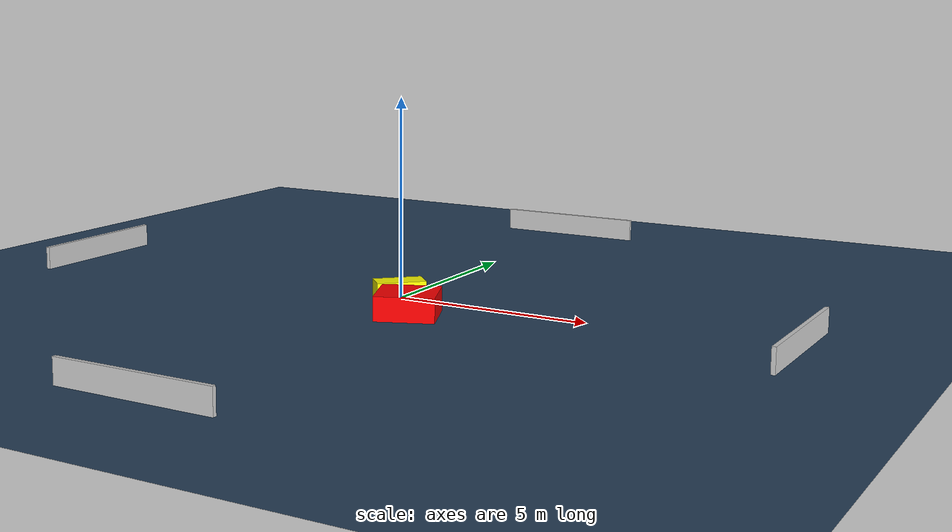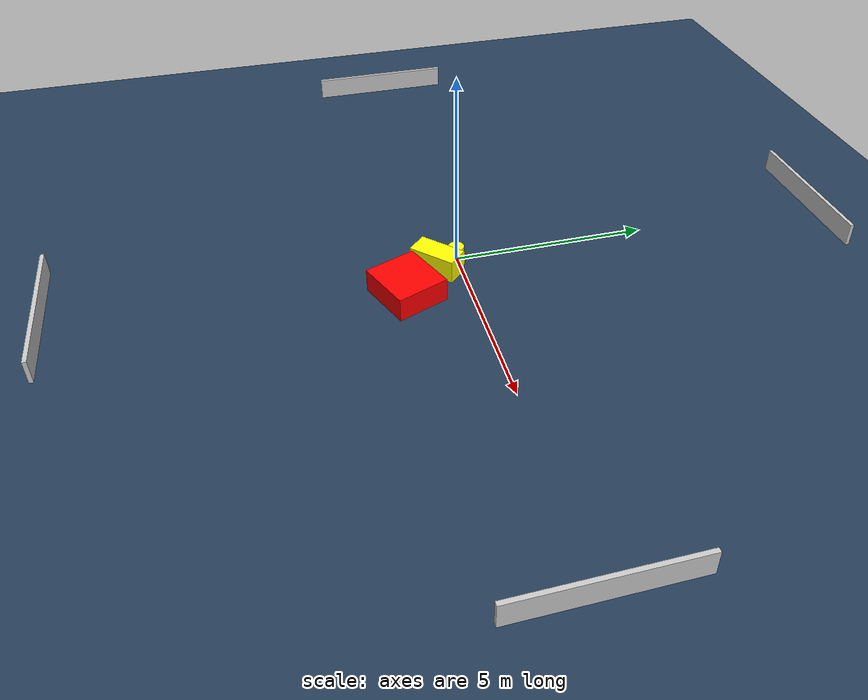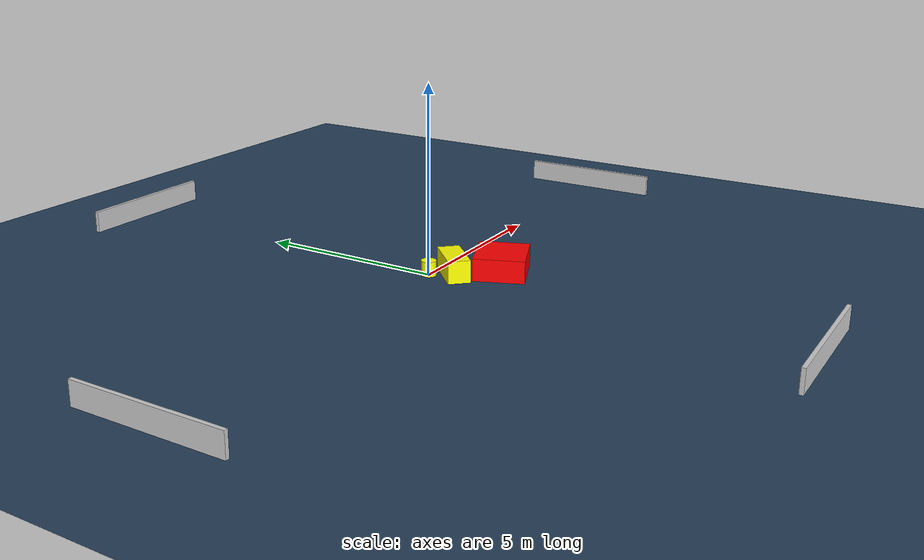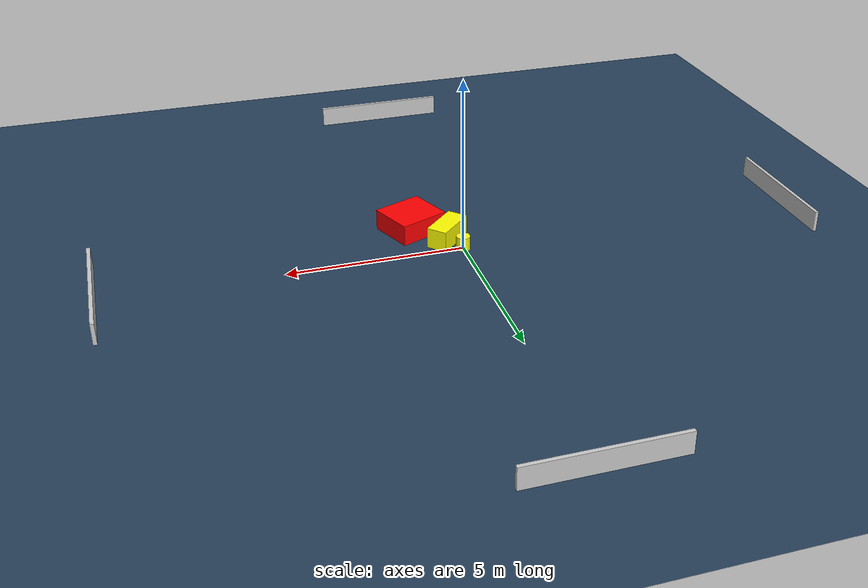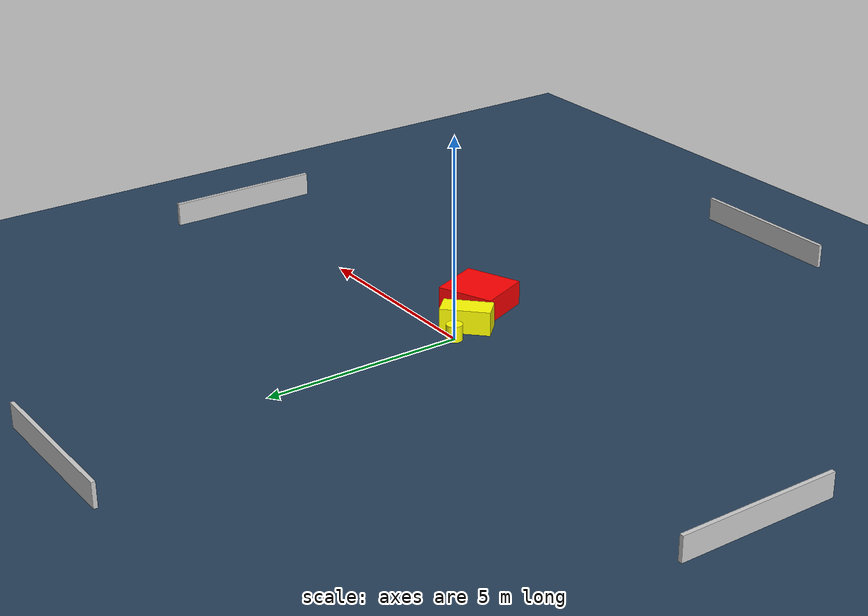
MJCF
<?xml version="1.0" ?>
<mujoco model="generated_environment">
  <option timestep="0.01" integrator="RK4" cone="elliptic"/>
  <default>
    <geom density="1"/>
  </default>
  <asset>
    <texture builtin="gradient" height="3072" name="skybox" rgb1="0.3 0.5 0.7" rgb2="0 0 0" type="skybox" width="512"/>
    <texture builtin="checker" height="300" name="groundplane" rgb1="0.2 0.3 0.4" rgb2="0.1 0.2 0.3" type="2d" width="300"/>
    <material name="groundplane" reflectance="0.2" texrepeat="5 5" texture="groundplane"/>
  </asset>
  <worldbody>
    <light dir="0 0 -1" directional="true" pos="0 0 1.5"/>
    <geom condim="3" friction="0.5 0.005 0.001" material="groundplane" name="floor" pos="0 0 0" size="0 0 0.05" type="plane"/>
    <body name="walls">
      <geom name="wall_1" condim="4" pos="-10.0 0.0 0.3" rgba="0.800000011920929 0.800000011920929 0.800000011920929 1.0" size="0.05 2.0 0.3" type="box"/>
      <geom name="wall_2" condim="4" pos="10.0 0.0 0.3" rgba="0.800000011920929 0.800000011920929 0.800000011920929 1.0" size="0.05 2.0 0.3" type="box"/>
      <geom name="wall_3" condim="4" pos="0.0 -10.0 0.3" rgba="0.800000011920929 0.800000011920929 0.800000011920929 1.0" size="2.0 0.05 0.3" type="box"/>
      <geom name="wall_4" condim="4" pos="0.0 10.0 0.3" rgba="0.800000011920929 0.800000011920929 0.800000011920929 1.0" size="2.0 0.05 0.3" type="box"/>
    </body>
    <body name="robot">
      <joint name="joint_x" type="slide" pos="0 0 0" axis="1 0 0"/>
      <joint name="joint_y" type="slide" pos="0 0 0" axis="0 1 0"/>
      <geom name="robot" type="cylinder" pos="0.0 0.0 0.2" size="0.2 0.2 0.0" mass="5.0" friction="1.0 0.005 0.0001" condim="4" rgba="1.0 1.0 0.0 1.0"/>
    </body>
    <body name="obstacle_1_movable">
      <geom name="obstacle_1_movable" condim="4" pos="0.29398177125787656 -0.5734316844403945 0.3" euler="0 0 44.0526782542107" friction="0.0 0.005 0.001" rgba="1.0 1.0 0.0 1.0" size="0.6116198600701197 0.2975020053888163 0.3" type="box" mass="0.1"/>
      <joint type="free"/>
    </body>
    <body name="obstacle_2_static">
      <geom name="obstacle_2_static" condim="4" pos="1.10670362219491 -1.5300824455033186 0.3" euler="0 0 21.98721602288026" friction="0.0 0.005 0.001" rgba="1.0 0.0 0.0 1.0" size="0.7275109613962449 0.6732262537028006 0.3" type="box"/>
    </body>
  </worldbody>
  <actuator>
    <motor name="actuator_x" joint="joint_x" gear="1" ctrlrange="-1 1"/>
    <motor name="actuator_y" joint="joint_y" gear="1" ctrlrange="-1 1"/>
  </actuator>
</mujoco>
